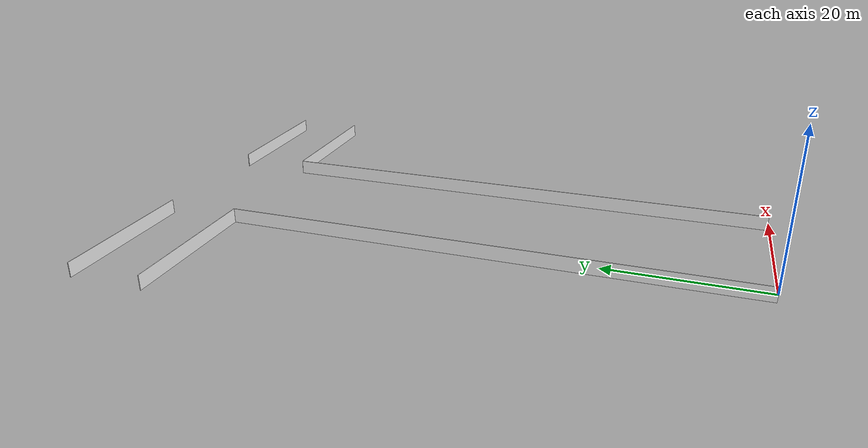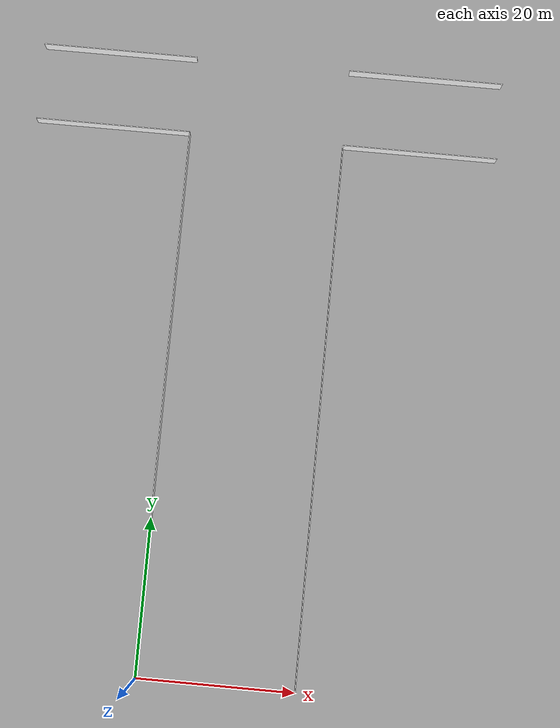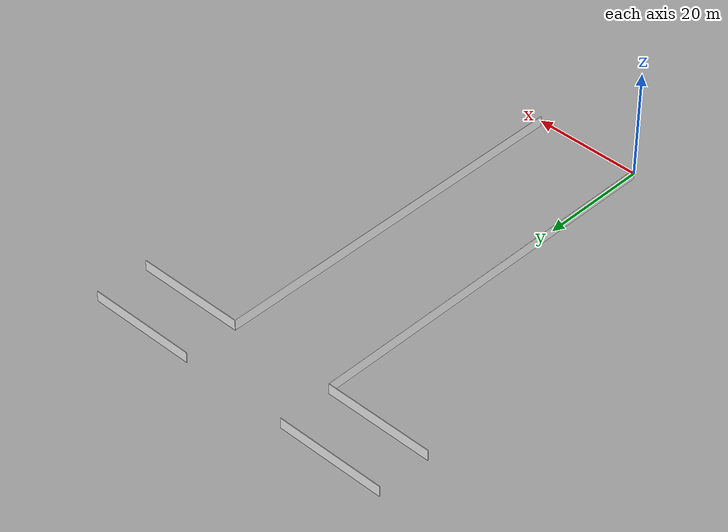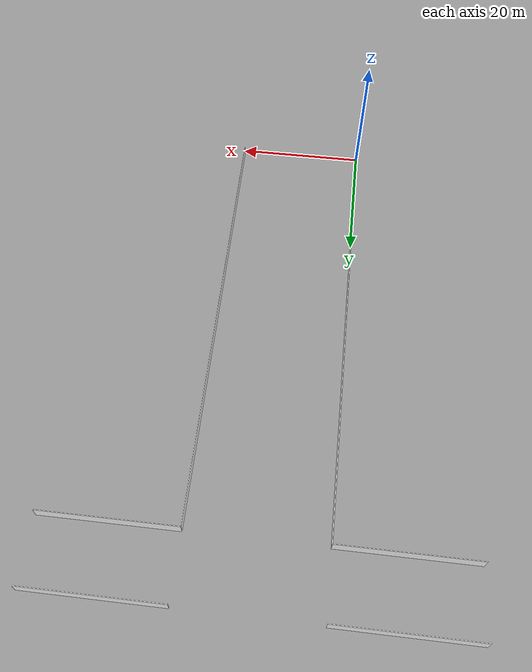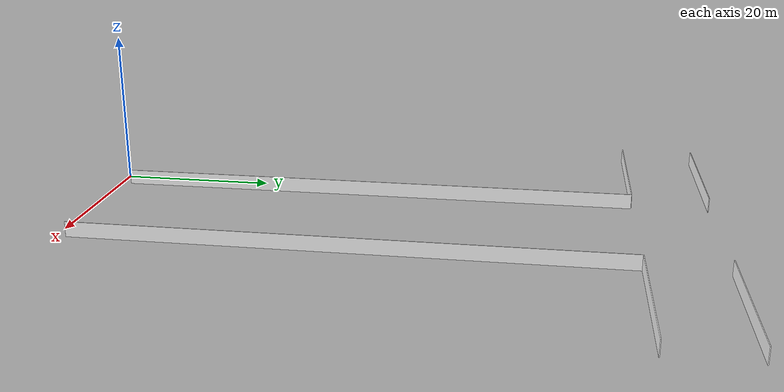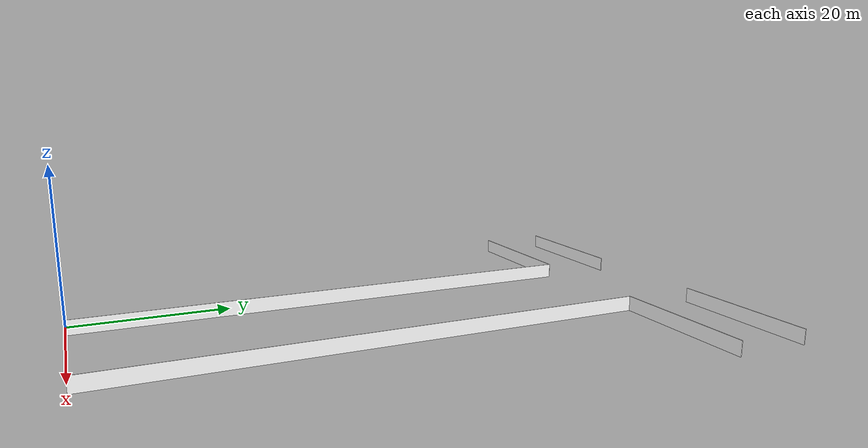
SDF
<?xml version='1.0'?>
<sdf version='1.6'>
  <model name='corridor'>
    <pose frame=''>0 0 0 0 0 0</pose>
    <static>1</static>

    <link name='Wall_1'>
      <collision name='Wall_1_Collision'>
        <geometry>
          <box>
            <size>0.1 70 2</size>
          </box>
        </geometry>
        <pose frame=''>0 0 0 0 0 0</pose>
      </collision>
      <visual name='Wall_1_Visual'>
        <pose frame=''>0 0 0 0 0 0</pose>
        <geometry>
          <box>
            <size>0.1 70 2</size>
          </box>
        </geometry>
        <material>
          <script>
            <uri>model://corridor/materials/scripts</uri>
            <uri>model://corridor/materials/textures</uri>
            <name>Gazebo/Brick</name>
          </script>
          <ambient>1 1 1 1</ambient>
        </material>
        <meta>
          <layer>0</layer>
        </meta>
      </visual>
      <pose frame=''>0 35 0 0 0 0</pose>
    </link>

    <link name='Wall_2'>
      <collision name='Wall_2_Collision'>
        <geometry>
          <box>
            <size>20 0.1 2</size>
          </box>
        </geometry>
        <pose frame=''>0 0 0 0 0 0</pose>
      </collision>
      <visual name='Wall_2_Visual'>
        <pose frame=''>0 0 0 0 0 0</pose>
        <geometry>
          <box>
            <size>20 0.1 2</size>
          </box>
        </geometry>
        <material>
          <script>
            <name>Gazebo/Brick</name>
          </script>
          <ambient>1 1 1 1</ambient>
        </material>
        <meta>
          <layer>0</layer>
        </meta>
      </visual>
      <pose frame=''>-10 70 0 0 0 0</pose>
    </link>

    <link name='Wall_4'>
      <collision name='Wall_4_Collision'>
        <geometry>
          <box>
            <size>20 0.1 2</size>
          </box>
        </geometry>
        <pose frame=''>0 0 0 0 0 0</pose>
      </collision>
      <visual name='Wall_4_Visual'>
        <pose frame=''>0 0 0 0 0 0</pose>
        <geometry>
          <box>
            <size>20 0.1 2</size>
          </box>
        </geometry>
        <material>
          <script>
            <name>Gazebo/Brick</name>
          </script>
          <ambient>1 1 1 1</ambient>
        </material>
        <meta>
          <layer>0</layer>
        </meta>
      </visual>
      <pose frame=''>-10 80 0 0 0 0</pose>
    </link>

    <link name='Wall_5'>
      <collision name='Wall_5_Collision'>
        <geometry>
          <box>
            <size>20 0.1 2</size>
          </box>
        </geometry>
        <pose frame=''>0 0 0 0 0 0</pose>
      </collision>
      <visual name='Wall_5_Visual'>
        <pose frame=''>0 0 0 0 0 0</pose>
        <geometry>
          <box>
            <size>20 0.1 2</size>
          </box>
        </geometry>
        <material>
          <script>
            <name>Gazebo/Brick</name>
          </script>
          <ambient>1 1 1 1</ambient>
        </material>
        <meta>
          <layer>0</layer>
        </meta>
      </visual>
      <pose frame=''>30 80 0 0 0 0</pose>
    </link>

    <link name='Wall_7'>
      <collision name='Wall_7_Collision'>
        <geometry>
          <box>
            <size>20 0.1 2</size>
          </box>
        </geometry>
        <pose frame=''>0 0 0 0 0 0</pose>
      </collision>
      <visual name='Wall_7_Visual'>
        <pose frame=''>0 0 0 0 0 0</pose>
        <geometry>
          <box>
            <size>-20 0.1 2</size>
          </box>
        </geometry>
        <material>
          <script>
            <name>Gazebo/Brick</name>
          </script>
          <ambient>1 1 1 1</ambient>
        </material>
        <meta>
          <layer>0</layer>
        </meta>
      </visual>
      <pose frame=''>30 70 0 0 0 0</pose>
    </link>

    <link name='Wall_8'>
      <collision name='Wall_8_Collision'>
        <geometry>
          <box>
            <size>0.1 70 2</size>
          </box>
        </geometry>
        <pose frame=''>0 0 0 0 0 0</pose>
      </collision>
      <visual name='Wall_8_Visual'>
        <pose frame=''>0 0 0 0 0 0</pose>
        <geometry>
          <box>
            <size>0.1 70 2</size>
          </box>
        </geometry>
        <material>
          <script>
            <name>Gazebo/Brick</name>
          </script>
          <ambient>1 1 1 1</ambient>
        </material>
        <meta>
          <layer>0</layer>
        </meta>
      </visual>
      <pose frame=''>20 35 0 0 0 0</pose>
    </link>

  </model>
</sdf>
